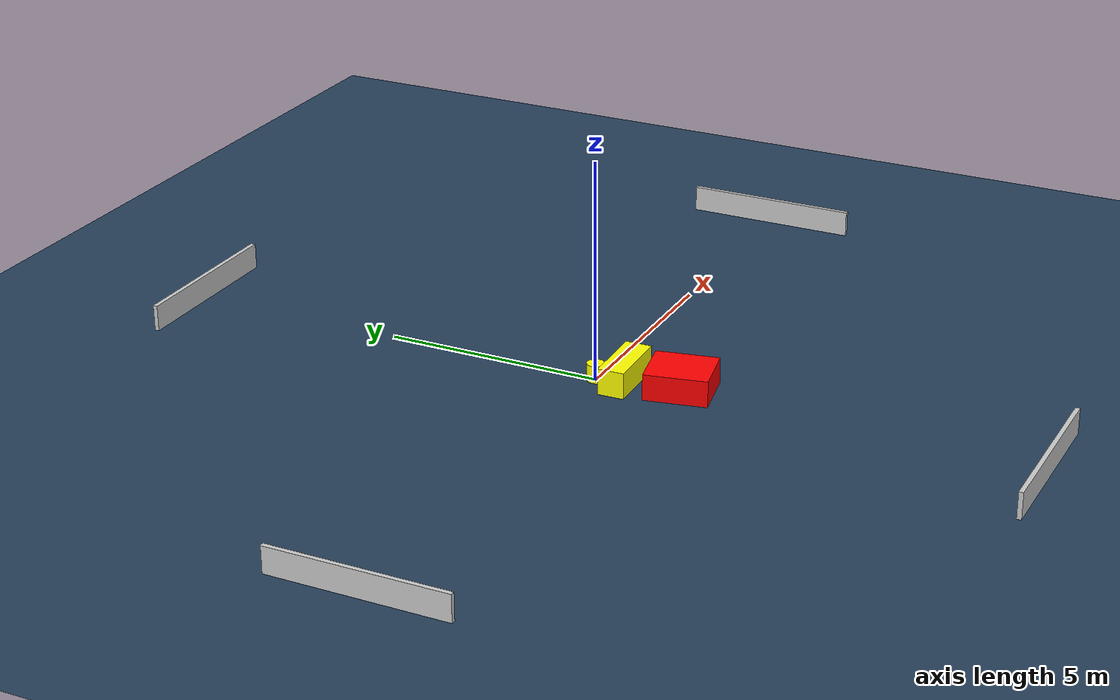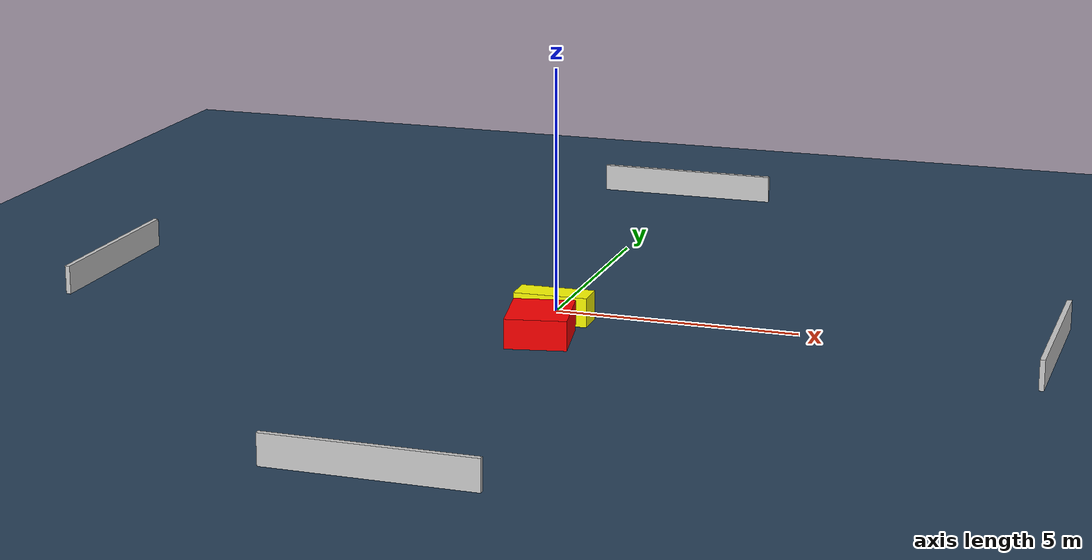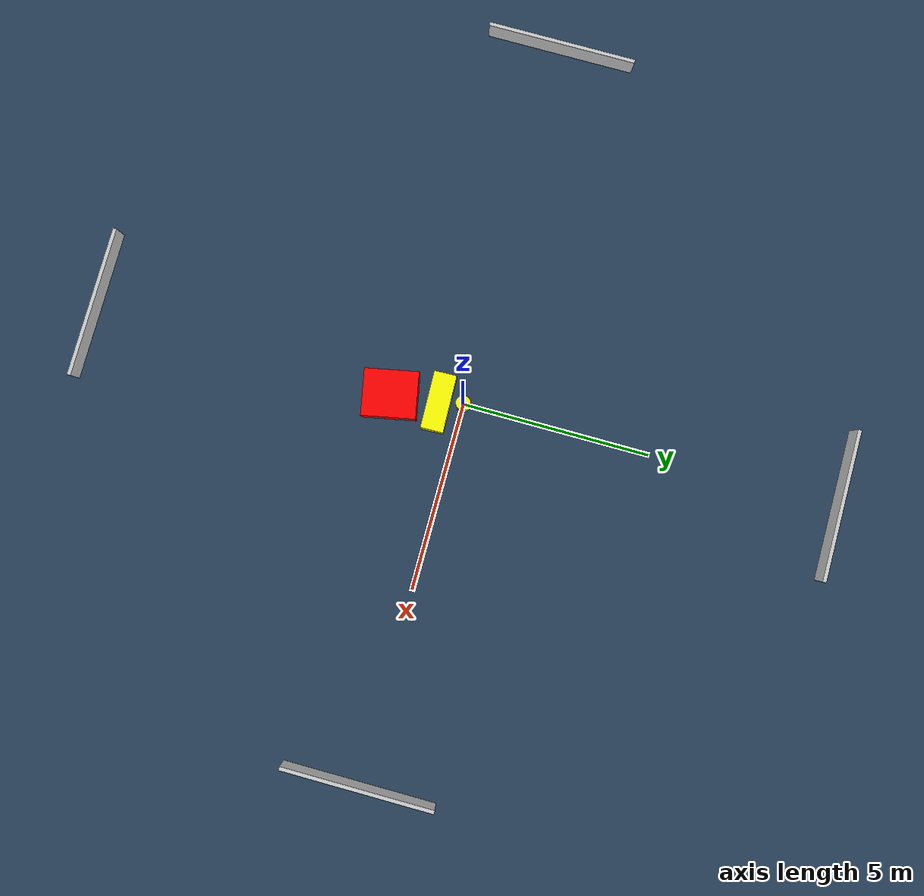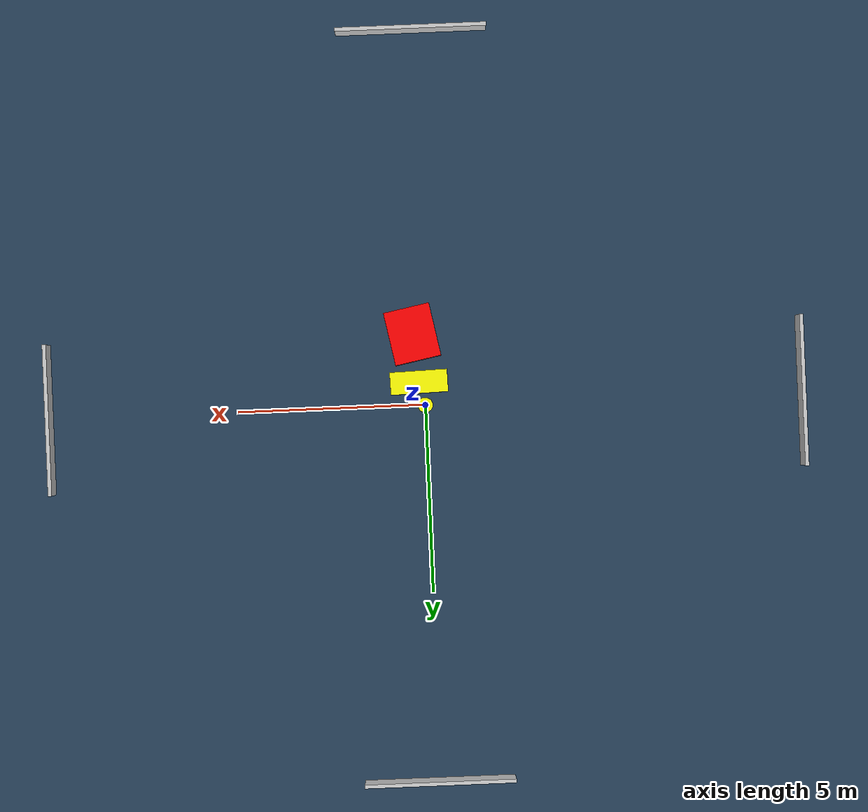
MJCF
<?xml version="1.0" ?>
<mujoco model="generated_environment">
  <option timestep="0.01" integrator="RK4" cone="elliptic"/>
  <default>
    <geom density="1"/>
  </default>
  <asset>
    <texture builtin="gradient" height="3072" name="skybox" rgb1="0.3 0.5 0.7" rgb2="0 0 0" type="skybox" width="512"/>
    <texture builtin="checker" height="300" name="groundplane" rgb1="0.2 0.3 0.4" rgb2="0.1 0.2 0.3" type="2d" width="300"/>
    <material name="groundplane" reflectance="0.2" texrepeat="5 5" texture="groundplane"/>
  </asset>
  <worldbody>
    <light dir="0 0 -1" directional="true" pos="0 0 1.5"/>
    <geom condim="3" friction="0.5 0.005 0.001" material="groundplane" name="floor" pos="0 0 0" size="0 0 0.05" type="plane"/>
    <body name="walls">
      <geom name="wall_1" condim="4" pos="-10.0 0.0 0.3" rgba="0.800000011920929 0.800000011920929 0.800000011920929 1.0" size="0.05 2.0 0.3" type="box"/>
      <geom name="wall_2" condim="4" pos="10.0 0.0 0.3" rgba="0.800000011920929 0.800000011920929 0.800000011920929 1.0" size="0.05 2.0 0.3" type="box"/>
      <geom name="wall_3" condim="4" pos="0.0 -10.0 0.3" rgba="0.800000011920929 0.800000011920929 0.800000011920929 1.0" size="2.0 0.05 0.3" type="box"/>
      <geom name="wall_4" condim="4" pos="0.0 10.0 0.3" rgba="0.800000011920929 0.800000011920929 0.800000011920929 1.0" size="2.0 0.05 0.3" type="box"/>
    </body>
    <body name="robot">
      <joint name="joint_x" type="slide" pos="0 0 0" axis="1 0 0"/>
      <joint name="joint_y" type="slide" pos="0 0 0" axis="0 1 0"/>
      <geom name="robot" type="cylinder" pos="0.0 0.0 0.2" size="0.2 0.2 0.0" mass="5.0" friction="1.0 0.005 0.0001" condim="4" rgba="1.0 1.0 0.0 1.0"/>
    </body>
    <body name="obstacle_1_movable">
      <geom name="obstacle_1_movable" condim="4" pos="0.1484792249409879 -0.6173773919738369 0.3" euler="0 0 91.62325837499088" friction="0.0 0.005 0.001" rgba="1.0 1.0 0.0 1.0" size="0.2981034608558478 0.7589834970718263 0.3" type="box" mass="0.1"/>
      <joint type="free"/>
    </body>
    <body name="obstacle_2_static">
      <geom name="obstacle_2_static" condim="4" pos="0.2758029741899733 -1.8859093215085245 0.3" euler="0 0 11.044019164322577" friction="0.0 0.005 0.001" rgba="1.0 0.0 0.0 1.0" size="0.6164086917203249 0.7099812926651827 0.3" type="box"/>
    </body>
  </worldbody>
  <actuator>
    <motor name="actuator_x" joint="joint_x" gear="1" ctrlrange="-1 1"/>
    <motor name="actuator_y" joint="joint_y" gear="1" ctrlrange="-1 1"/>
  </actuator>
</mujoco>
